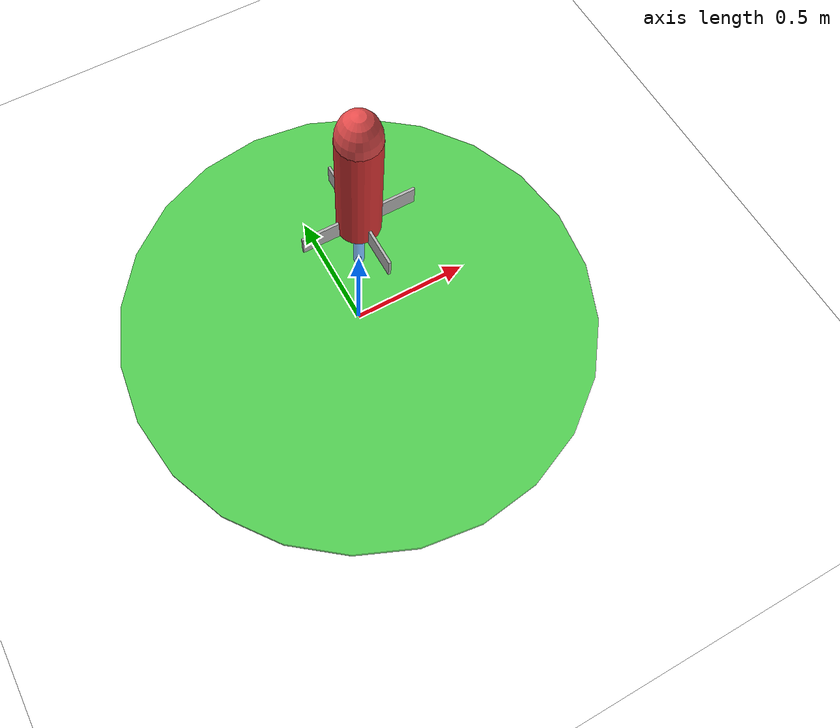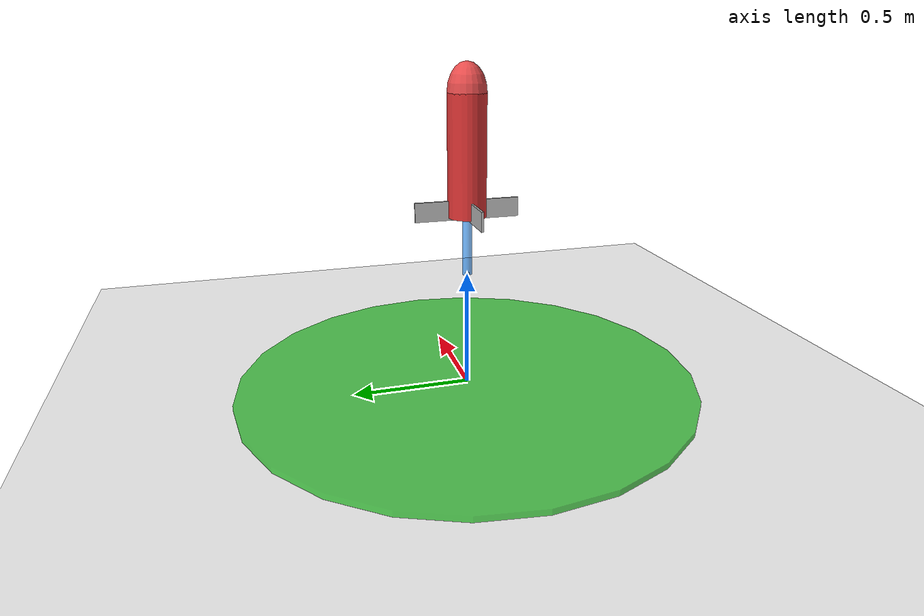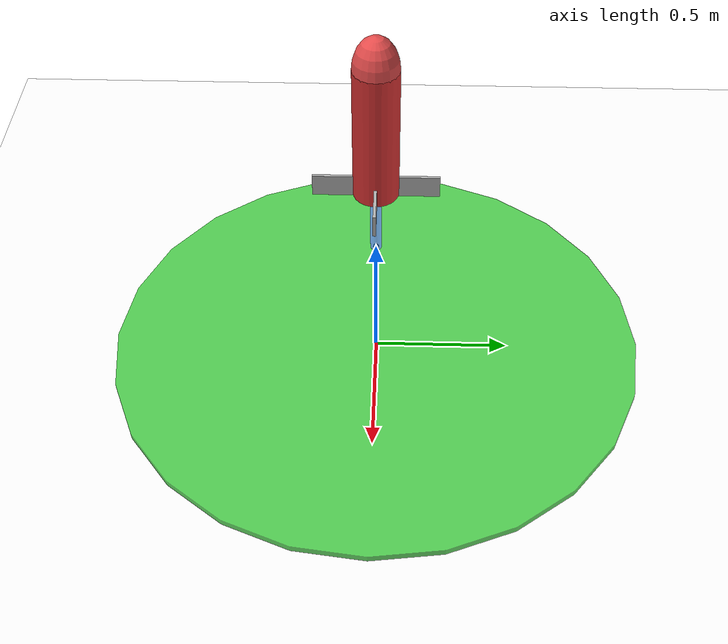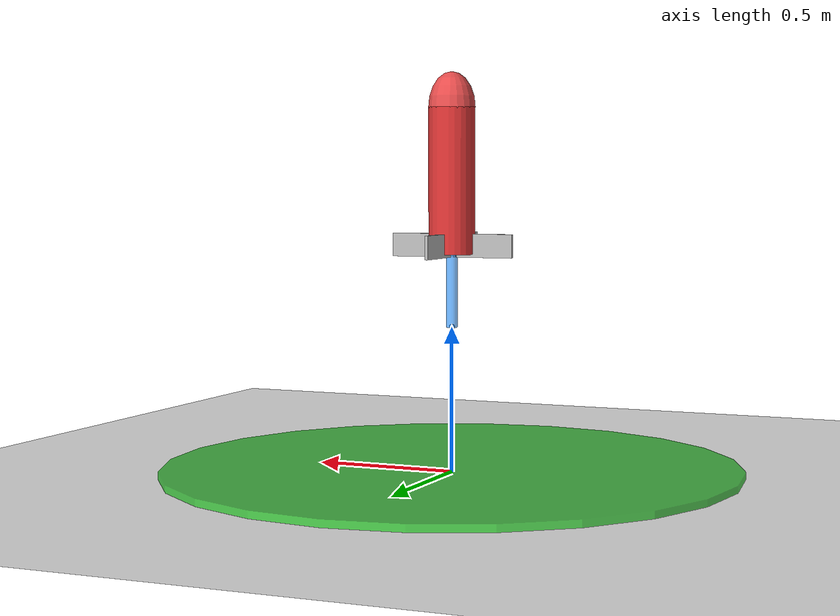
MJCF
<mujoco model="ball-thrust-universal">
  <compiler angle="degree" coordinate="local"/>
  <option timestep="0.01" gravity="0 0 -1.62" integrator="RK4"/>

  <visual>
    <quality shadowsize="2048"/>
    <headlight diffuse="0.6 0.6 0.6"
               ambient="0.3 0.3 0.3"
               specular="0.1 0.1 0.1"/>
    <map znear="0.001" zfar="50"/>
  </visual>

  <default>
    <geom contype="1" conaffinity="1"
          friction="0.8 0.1 0.01"
          rgba="0.8 0.8 0.8 1"/>
    <site rgba="0.2 0.6 1.0 0.9"/>
    <joint damping="0.02" limited="true" range="-90 90"/>
    <motor ctrllimited="true" ctrlrange="-2 2"/>
  </default>

  <asset>
      <texture type="skybox" builtin="gradient" rgb1="0.3 0.5 0.7" rgb2="0 0 0" width="512" height="3072"/>
      <texture type="2d" name="groundplane" builtin="checker" mark="edge" rgb1="0.9 0.9 0.9" rgb2="0.7 0.7 0.7"
            markrgb="0.8 0.8 0.8" width="300" height="300"/>
      <material name="groundplane" texture="groundplane" texuniform="true" texrepeat="5 5" reflectance="0.2"/>
             <!-- rgb1="0.9 0.9 0.9" rgb2="0.7 0.7 0.7" -->
    <mesh name="tintin_rocket" file="../meshes/tintin_rocket_new.obj"
          scale="0.5 0.5 0.5"/>
    <material name="target_ring" rgba="0.2 0.8 0.2 0.8" reflectance="0.2"/>
  </asset>

  <worldbody>

    <!-- ground plane -->
    <geom name="ground" type="plane"
          size="10 10 0.1"
          material="groundplane"
          rgba="1 1 1 1"/>

    <!-- Landing target ring (radius=1) -->
    <geom name="landing_ring"
          type="cylinder"
          pos="0 0 0.001"
          size="1 0.02"
          rgba="0.2 0.8 0.2 0.8"
          material="target_ring"
          contype="0" conaffinity="0"/>

    <!-- the rocket (ball root body) -->
    <body name="ball" pos="0 0 1">
        <freejoint name="ball_free"/>

        <inertial pos="0 0 0" mass="100"
                  diaginertia="0.010 0.010 0.003"/>

        <!-- fuselage -->
        <geom name="rocket_fuselage" type="cylinder"
              fromto="0 0 -0.25  0 0 0.25"
              size="0.08"
              rgba="0.85 0.2 0.2 1"/>

        <!-- nose -->
        <geom name="rocket_nose" type="ellipsoid"
              pos="0 0 0.25"
              size="0.08 0.08 0.12"
              rgba="0.9 0.3 0.3 1"/>

        <!-- fins -->
        <geom name="fin_xp" type="box"
              pos="0.12 0 -0.22"
              size="0.10 0.005 0.04"
              rgba="0.7 0.7 0.7 1"/>
        <geom name="fin_xn" type="box"
              pos="-0.12 0 -0.22"
              size="0.10 0.005 0.04"
              rgba="0.7 0.7 0.7 1"/>
        <geom name="fin_yp" type="box"
              pos="0 0.12 -0.22"
              size="0.005 0.10 0.04"
              rgba="0.7 0.7 0.7 1"/>
        <geom name="fin_yn" type="box"
              pos="0 -0.12 -0.22"
              size="0.005 0.10 0.04"
              rgba="0.7 0.7 0.7 1"/>

        <!-- thruster assembly -->
        <body name="thruster_mount" pos="0 0 -0.25">
            <inertial pos="0 0 0" mass="20"
                      diaginertia="1e-4 1e-4 1e-4"/>

            <joint name="thruster_yaw" type="hinge"
                   axis="1 0 0"
                   range="-30 30" damping="0.0"/>

            <body name="thruster_gimbal" pos="0 0 0">
                <inertial pos="0 0 0" mass="30"
                          diaginertia="2e-4 2e-4 2e-4"/>

                <joint name="thruster_pitch" type="hinge"
                       axis="0 1 0"
                       range="-30 30" damping="0.0"/>

                <geom name="thruster_geom" type="cylinder"
                      fromto="0 0 0  0 0 -0.25"
                      size="0.02"
                      rgba="0.2 0.6 1.0 0.7"/>

                <site name="thrust_site" pos="0 0 -0.25"
                      type="sphere" size="0.01"
                      rgba="0.2 0.6 1.0 0.9"/>
            </body>
        </body>
    </body>

  </worldbody>

  <!-- Actuators -->
  <actuator>
    <motor name="yaw_motor" joint="thruster_yaw"
           gear="1" ctrllimited="true" ctrlrange="-50 50"/>

    <motor name="pitch_motor" joint="thruster_pitch"
           gear="1" ctrllimited="true" ctrlrange="-50 50"/>

    <!-- main thrust -->
    <general name="thrust" site="thrust_site"
             gear="0 0 1 0 0 0"
             biastype="none"
             ctrllimited="true" ctrlrange="0 10000"/>
  </actuator>

</mujoco>
